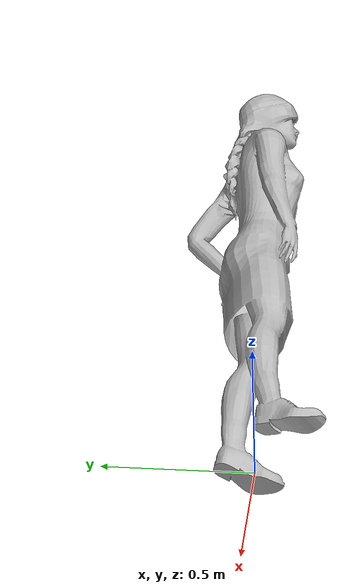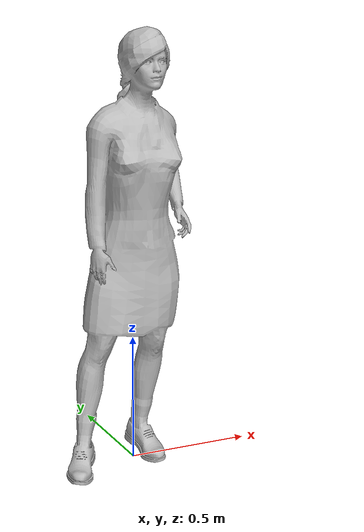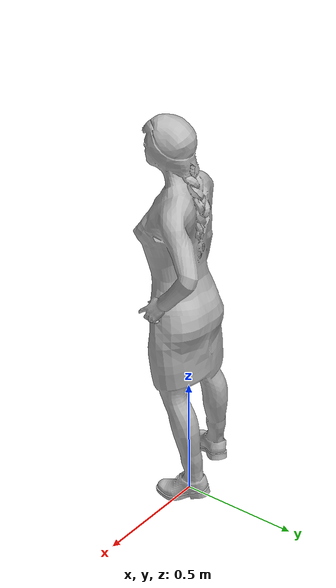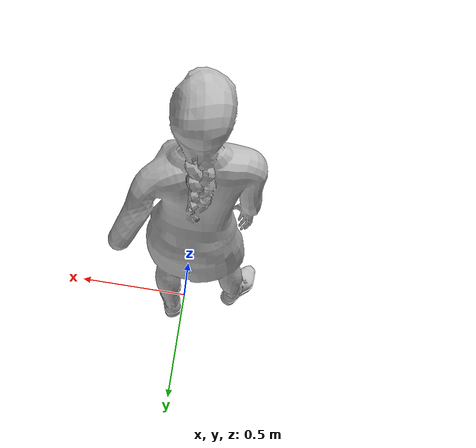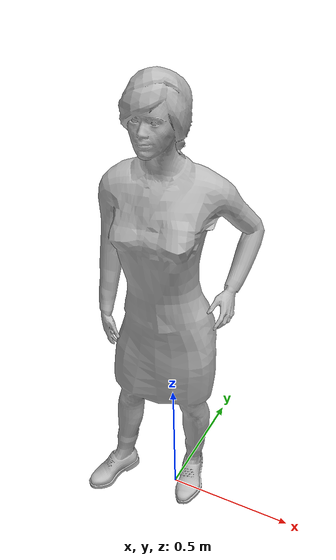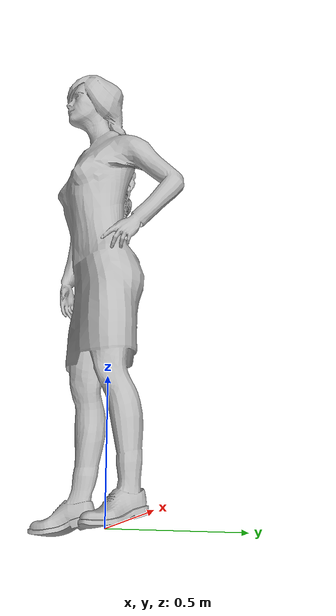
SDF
<?xml version="1.0" ?>
<sdf version="1.5">
  <model name="elegant_female2">
    <static>true</static>
    <link name="link">
      <collision name="box">
        <pose>0 0 0.9 0 0 0</pose>
        <geometry>
          <box>
            <size>0.76 0.33 1.77</size>
          </box>
        </geometry>
      </collision>
      <visual name="visual">
        <pose>0 0 0.02 0.04 0 0</pose>
        <geometry>
          <mesh>
            <uri>model://elegant_female2/meshes/elegant_female2.dae</uri>
          </mesh>
        </geometry>
      </visual>
    </link>
  </model>
</sdf>
